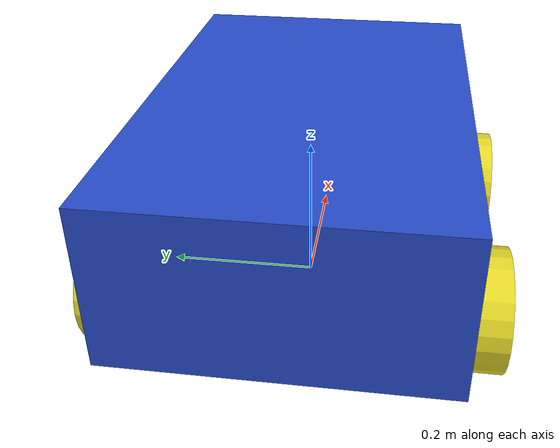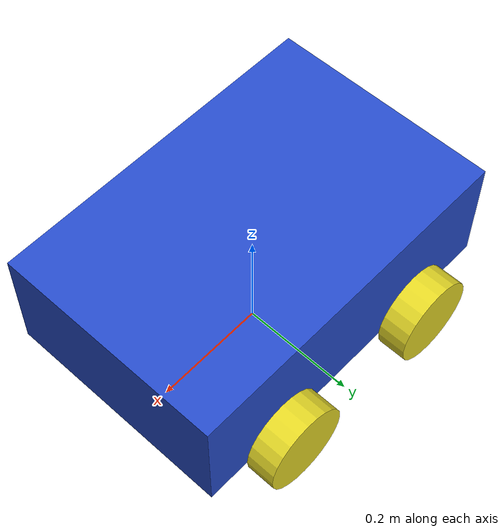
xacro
<?xml version="1.0"?>
<robot xmlns:xacro="http://www.ros.org/wiki/xacro">

    <xacro:property name="Pi" value="3.141592653589793238464" />
    <xacro:property name="base_length" value="0.6" />
    <xacro:property name="base_width" value="0.4" />
    <xacro:property name="base_height" value="0.2" />
    <xacro:property name="wheel_radius" value="0.075" />
    <xacro:property name="wheel_length" value="0.05" />

    <link name = "base_footprint" />

    <link name="base_link">
        <visual>
            <geometry>
                <box size="${base_length} ${base_width} ${base_height}"/>
            </geometry>
            <origin xyz="0 0 ${base_height/2}" rpy="0 0 0"/>
            <material name="blue"/>
        </visual>
        <collision>
            <geometry>
                 <box size="${base_length*1.1} ${base_width*1.1} ${base_height*1.1}"/>
            </geometry>
            <origin xyz="0 0 ${base_height/2}" rpy="0 0 0"/>
        </collision>
        <xacro:box_inertia m="5.0" l="${base_length}" w="${base_width}" h="${base_height}"
                           xyz = "0 0 ${base_height/2}" rpy="0 0 0" />
    </link>

    <xacro:macro name="wheel_link" params="prefix" >
        <link name="${prefix}_wheel_link" >
            <visual>
                <geometry>
                    <cylinder radius = "${wheel_radius}" length = "${wheel_length}" />
                </geometry>
                <origin xyz = "0 0 0" rpy = "${Pi/2.0} -${Pi/2.0} 0" />
                <material name = "yellow" />
            </visual>
            <collision>
                 <geometry>
                    <cylinder radius = "${wheel_radius}" length = "${wheel_length*1.2}" />
                </geometry>
                <origin xyz = "0 0 0" rpy = "${Pi/2.0} -${Pi/2.0} 0" />
            </collision>
            <xacro:wheel_inertia m="1.0" r = "${wheel_radius}" h = "${wheel_length}"
                                 xyz = "0 0 0" rpy = "${Pi/2.0} -${Pi/2.0} 0" />
        </link>
    </xacro:macro>

    <xacro:wheel_link prefix="right_front" />
    <xacro:wheel_link prefix="left_front" />
    <xacro:wheel_link prefix="right_back" />
    <xacro:wheel_link prefix="left_back" />

   <joint name="base_joint" type="fixed">
        <parent link="base_footprint" />
        <child link="base_link" />
        <origin xyz="0 0 ${wheel_radius}" rpy="0 0 0"/>
    </joint>

    <joint name="base_right_front_wheel_joint" type="continuous">
        <parent link="base_link" />
        <child link="right_front_wheel_link" />
        <origin xyz="${base_length / 4.0} ${-(base_width + wheel_length) / 2.0} 0" rpy="0 0 0" />
        <axis xyz="0 1 0" />
    </joint>

    <joint name="base_left_front_wheel_joint" type="continuous">
        <parent link="base_link" />
        <child link="left_front_wheel_link" />
        <origin xyz="${base_length / 4.0} ${(base_width + wheel_length) / 2.0} 0" rpy="0 0 0" />
        <axis xyz="0 1 0" />
    </joint>

    <joint name="base_right_back_wheel_joint" type="continuous">
        <parent link="base_link" />
        <child link="right_back_wheel_link" />
        <origin xyz="${-base_length / 4.0} ${-(base_width + wheel_length) / 2.0} 0" rpy="0 0 0" />
        <axis xyz="0 1 0" />
    </joint>

    <joint name="base_left_back_wheel_joint" type="continuous">
        <parent link="base_link" />
        <child link="left_back_wheel_link" />
        <origin xyz="${-base_length / 4.0} ${(base_width + wheel_length) / 2.0} 0" rpy="0 0 0" />
        <axis xyz="0 1 0" />
    </joint>

</robot>
